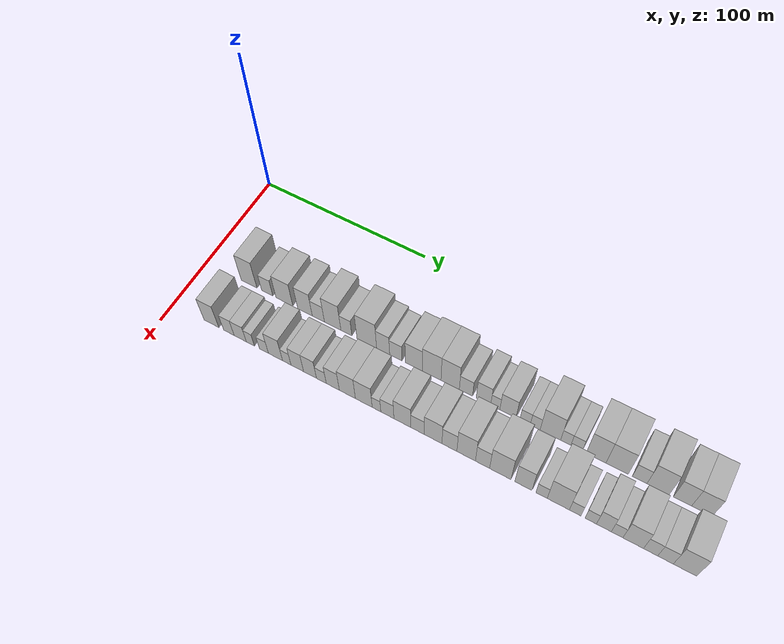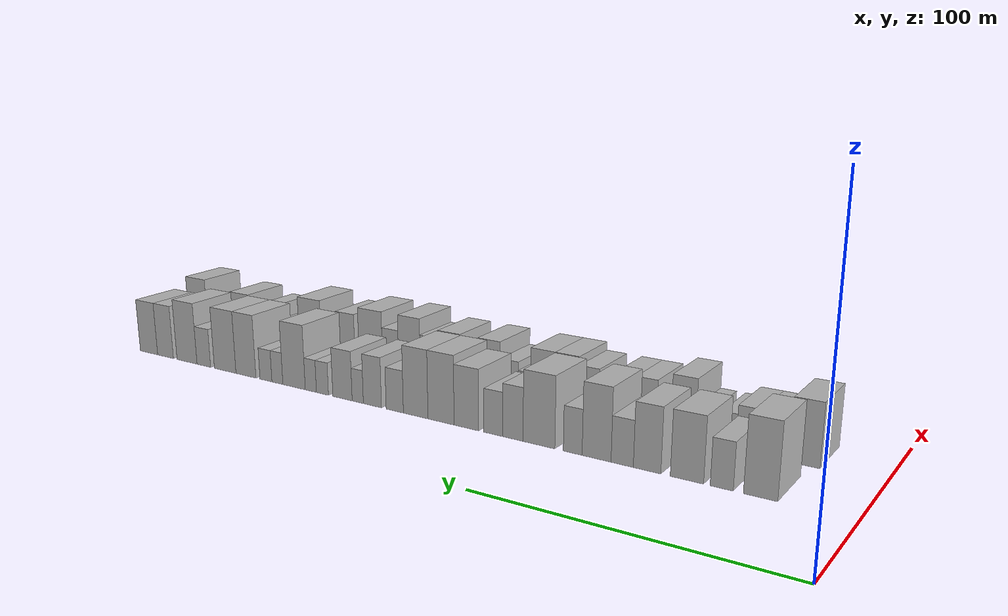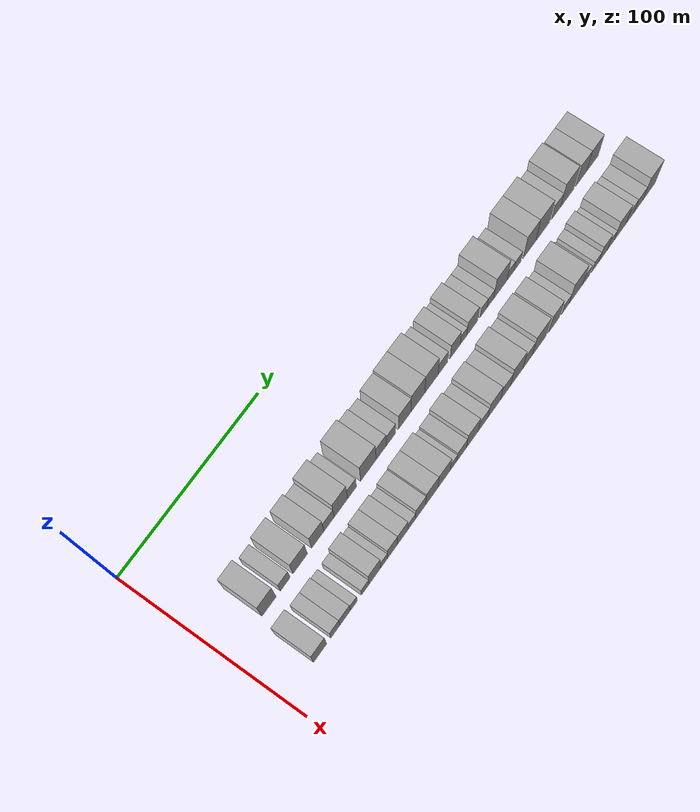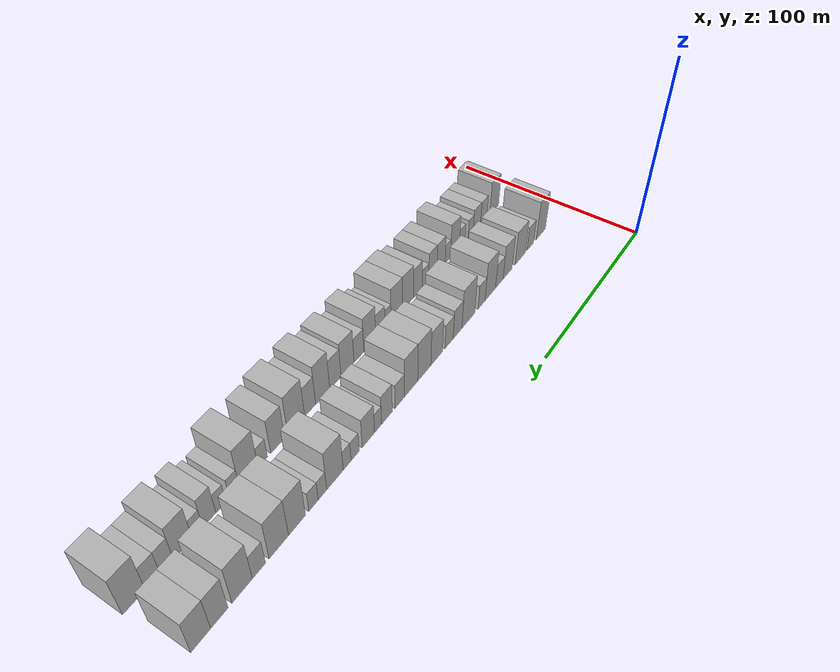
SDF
<sdf version="1.6">
 <world name="default">
  <model name="building_32">
   <static>1</static>
   <pose>50.0000 27.4965 0 0.000000 0.000000 0.000000</pose>
   <link name="link">
    <pose>0 0 12.00 0 0 0</pose>
    <collision name="collision"><geometry><box><size>20.0000 9.9842 24.0000</size></box></geometry></collision>
    <visual name="visual">
     <cast_shadows>0</cast_shadows>
     <geometry><box><size>20.0000 9.9842 24.0000</size></box></geometry>
     <material>
      <script>
       <uri>model://HANNAS_wall/materials/scripts</uri>
       <uri>model://HANNAS_wall/materials/textures</uri>
       <name>vrc/HANNAS_wall</name>
      </script>
     </material>
    </visual>
   </link>
  </model>
  <model name="building_33">
   <static>1</static>
   <pose>50.0000 38.9702 0 0.000000 0.000000 0.000000</pose>
   <link name="link">
    <pose>0 0 7.50 0 0 0</pose>
    <collision name="collision"><geometry><box><size>20.0000 6.9632 15.0000</size></box></geometry></collision>
    <visual name="visual">
     <cast_shadows>0</cast_shadows>
     <geometry><box><size>20.0000 6.9632 15.0000</size></box></geometry>
     <material>
      <script>
       <uri>model://HANNAS_wall/materials/scripts</uri>
       <uri>model://HANNAS_wall/materials/textures</uri>
       <name>vrc/HANNAS_wall</name>
      </script>
     </material>
    </visual>
   </link>
  </model>
  <model name="building_34">
   <static>1</static>
   <pose>50.0000 49.6491 0 0.000000 0.000000 0.000000</pose>
   <link name="link">
    <pose>0 0 10.50 0 0 0</pose>
    <collision name="collision"><geometry><box><size>20.0000 10.3947 21.0000</size></box></geometry></collision>
    <visual name="visual">
     <cast_shadows>0</cast_shadows>
     <geometry><box><size>20.0000 10.3947 21.0000</size></box></geometry>
     <material>
      <script>
       <uri>model://HANNAS_wall/materials/scripts</uri>
       <uri>model://HANNAS_wall/materials/textures</uri>
       <name>vrc/HANNAS_wall</name>
      </script>
     </material>
    </visual>
   </link>
  </model>
  <model name="building_35">
   <static>1</static>
   <pose>50.0000 62.3072 0 0.000000 0.000000 0.000000</pose>
   <link name="link">
    <pose>0 0 10.50 0 0 0</pose>
    <collision name="collision"><geometry><box><size>20.0000 8.9213 21.0000</size></box></geometry></collision>
    <visual name="visual">
     <cast_shadows>0</cast_shadows>
     <geometry><box><size>20.0000 8.9213 21.0000</size></box></geometry>
     <material>
      <script>
       <uri>model://HANNAS_wall/materials/scripts</uri>
       <uri>model://HANNAS_wall/materials/textures</uri>
       <name>vrc/HANNAS_wall</name>
      </script>
     </material>
    </visual>
   </link>
  </model>
  <model name="building_36">
   <static>1</static>
   <pose>50.0000 70.4754 0 0.000000 0.000000 0.000000</pose>
   <link name="link">
    <pose>0 0 7.50 0 0 0</pose>
    <collision name="collision"><geometry><box><size>20.0000 7.4153 15.0000</size></box></geometry></collision>
    <visual name="visual">
     <cast_shadows>0</cast_shadows>
     <geometry><box><size>20.0000 7.4153 15.0000</size></box></geometry>
     <material>
      <script>
       <uri>model://HANNAS_wall/materials/scripts</uri>
       <uri>model://HANNAS_wall/materials/textures</uri>
       <name>vrc/HANNAS_wall</name>
      </script>
     </material>
    </visual>
   </link>
  </model>
  <model name="building_37">
   <static>1</static>
   <pose>50.0000 79.1271 0 0.000000 0.000000 0.000000</pose>
   <link name="link">
    <pose>0 0 12.00 0 0 0</pose>
    <collision name="collision"><geometry><box><size>20.0000 9.8882 24.0000</size></box></geometry></collision>
    <visual name="visual">
     <cast_shadows>0</cast_shadows>
     <geometry><box><size>20.0000 9.8882 24.0000</size></box></geometry>
     <material>
      <script>
       <uri>model://HANNAS_wall/materials/scripts</uri>
       <uri>model://HANNAS_wall/materials/textures</uri>
       <name>vrc/HANNAS_wall</name>
      </script>
     </material>
    </visual>
   </link>
  </model>
  <model name="building_38">
   <static>1</static>
   <pose>50.0000 87.3557 0 0.000000 0.000000 0.000000</pose>
   <link name="link">
    <pose>0 0 7.50 0 0 0</pose>
    <collision name="collision"><geometry><box><size>20.0000 6.5690 15.0000</size></box></geometry></collision>
    <visual name="visual">
     <cast_shadows>0</cast_shadows>
     <geometry><box><size>20.0000 6.5690 15.0000</size></box></geometry>
     <material>
      <script>
       <uri>model://HANNAS_wall/materials/scripts</uri>
       <uri>model://HANNAS_wall/materials/textures</uri>
       <name>vrc/HANNAS_wall</name>
      </script>
     </material>
    </visual>
   </link>
  </model>
  <model name="building_39">
   <static>1</static>
   <pose>50.0000 99.4157 0 0.000000 0.000000 0.000000</pose>
   <link name="link">
    <pose>0 0 12.00 0 0 0</pose>
    <collision name="collision"><geometry><box><size>20.0000 11.5509 24.0000</size></box></geometry></collision>
    <visual name="visual">
     <cast_shadows>0</cast_shadows>
     <geometry><box><size>20.0000 11.5509 24.0000</size></box></geometry>
     <material>
      <script>
       <uri>model://HANNAS_wall/materials/scripts</uri>
       <uri>model://HANNAS_wall/materials/textures</uri>
       <name>vrc/HANNAS_wall</name>
      </script>
     </material>
    </visual>
   </link>
  </model>
  <model name="building_40">
   <static>1</static>
   <pose>50.0000 109.0097 0 0.000000 0.000000 0.000000</pose>
   <link name="link">
    <pose>0 0 9.00 0 0 0</pose>
    <collision name="collision"><geometry><box><size>20.0000 7.6370 18.0000</size></box></geometry></collision>
    <visual name="visual">
     <cast_shadows>0</cast_shadows>
     <geometry><box><size>20.0000 7.6370 18.0000</size></box></geometry>
     <material>
      <script>
       <uri>model://HANNAS_wall/materials/scripts</uri>
       <uri>model://HANNAS_wall/materials/textures</uri>
       <name>vrc/HANNAS_wall</name>
      </script>
     </material>
    </visual>
   </link>
  </model>
  <model name="building_41">
   <static>1</static>
   <pose>50.0000 116.3840 0 0.000000 0.000000 0.000000</pose>
   <link name="link">
    <pose>0 0 7.50 0 0 0</pose>
    <collision name="collision"><geometry><box><size>20.0000 7.1115 15.0000</size></box></geometry></collision>
    <visual name="visual">
     <cast_shadows>0</cast_shadows>
     <geometry><box><size>20.0000 7.1115 15.0000</size></box></geometry>
     <material>
      <script>
       <uri>model://HANNAS_wall/materials/scripts</uri>
       <uri>model://HANNAS_wall/materials/textures</uri>
       <name>vrc/HANNAS_wall</name>
      </script>
     </material>
    </visual>
   </link>
  </model>
  <model name="building_42">
   <static>1</static>
   <pose>50.0000 126.7651 0 0.000000 0.000000 0.000000</pose>
   <link name="link">
    <pose>0 0 10.50 0 0 0</pose>
    <collision name="collision"><geometry><box><size>20.0000 9.6506 21.0000</size></box></geometry></collision>
    <visual name="visual">
     <cast_shadows>0</cast_shadows>
     <geometry><box><size>20.0000 9.6506 21.0000</size></box></geometry>
     <material>
      <script>
       <uri>model://HANNAS_wall/materials/scripts</uri>
       <uri>model://HANNAS_wall/materials/textures</uri>
       <name>vrc/HANNAS_wall</name>
      </script>
     </material>
    </visual>
   </link>
  </model>
  <model name="building_43">
   <static>1</static>
   <pose>50.0000 136.8719 0 0.000000 0.000000 0.000000</pose>
   <link name="link">
    <pose>0 0 12.00 0 0 0</pose>
    <collision name="collision"><geometry><box><size>20.0000 10.5631 24.0000</size></box></geometry></collision>
    <visual name="visual">
     <cast_shadows>0</cast_shadows>
     <geometry><box><size>20.0000 10.5631 24.0000</size></box></geometry>
     <material>
      <script>
       <uri>model://HANNAS_wall/materials/scripts</uri>
       <uri>model://HANNAS_wall/materials/textures</uri>
       <name>vrc/HANNAS_wall</name>
      </script>
     </material>
    </visual>
   </link>
  </model>
  <model name="building_44">
   <static>1</static>
   <pose>50.0000 147.2639 0 0.000000 0.000000 0.000000</pose>
   <link name="link">
    <pose>0 0 12.00 0 0 0</pose>
    <collision name="collision"><geometry><box><size>20.0000 10.2209 24.0000</size></box></geometry></collision>
    <visual name="visual">
     <cast_shadows>0</cast_shadows>
     <geometry><box><size>20.0000 10.2209 24.0000</size></box></geometry>
     <material>
      <script>
       <uri>model://HANNAS_wall/materials/scripts</uri>
       <uri>model://HANNAS_wall/materials/textures</uri>
       <name>vrc/HANNAS_wall</name>
      </script>
     </material>
    </visual>
   </link>
  </model>
  <model name="building_45">
   <static>1</static>
   <pose>50.0000 156.0411 0 0.000000 0.000000 0.000000</pose>
   <link name="link">
    <pose>0 0 7.50 0 0 0</pose>
    <collision name="collision"><geometry><box><size>20.0000 7.3334 15.0000</size></box></geometry></collision>
    <visual name="visual">
     <cast_shadows>0</cast_shadows>
     <geometry><box><size>20.0000 7.3334 15.0000</size></box></geometry>
     <material>
      <script>
       <uri>model://HANNAS_wall/materials/scripts</uri>
       <uri>model://HANNAS_wall/materials/textures</uri>
       <name>vrc/HANNAS_wall</name>
      </script>
     </material>
    </visual>
   </link>
  </model>
  <model name="building_46">
   <static>1</static>
   <pose>50.0000 165.6689 0 0.000000 0.000000 0.000000</pose>
   <link name="link">
    <pose>0 0 9.00 0 0 0</pose>
    <collision name="collision"><geometry><box><size>20.0000 7.9223 18.0000</size></box></geometry></collision>
    <visual name="visual">
     <cast_shadows>0</cast_shadows>
     <geometry><box><size>20.0000 7.9223 18.0000</size></box></geometry>
     <material>
      <script>
       <uri>model://HANNAS_wall/materials/scripts</uri>
       <uri>model://HANNAS_wall/materials/textures</uri>
       <name>vrc/HANNAS_wall</name>
      </script>
     </material>
    </visual>
   </link>
  </model>
  <model name="building_47">
   <static>1</static>
   <pose>50.0000 172.1185 0 0.000000 0.000000 0.000000</pose>
   <link name="link">
    <pose>0 0 6.00 0 0 0</pose>
    <collision name="collision"><geometry><box><size>20.0000 4.9769 12.0000</size></box></geometry></collision>
    <visual name="visual">
     <cast_shadows>0</cast_shadows>
     <geometry><box><size>20.0000 4.9769 12.0000</size></box></geometry>
     <material>
      <script>
       <uri>model://HANNAS_wall/materials/scripts</uri>
       <uri>model://HANNAS_wall/materials/textures</uri>
       <name>vrc/HANNAS_wall</name>
      </script>
     </material>
    </visual>
   </link>
  </model>
  <model name="building_48">
   <static>1</static>
   <pose>50.0000 178.9828 0 0.000000 0.000000 0.000000</pose>
   <link name="link">
    <pose>0 0 9.00 0 0 0</pose>
    <collision name="collision"><geometry><box><size>20.0000 8.7516 18.0000</size></box></geometry></collision>
    <visual name="visual">
     <cast_shadows>0</cast_shadows>
     <geometry><box><size>20.0000 8.7516 18.0000</size></box></geometry>
     <material>
      <script>
       <uri>model://HANNAS_wall/materials/scripts</uri>
       <uri>model://HANNAS_wall/materials/textures</uri>
       <name>vrc/HANNAS_wall</name>
      </script>
     </material>
    </visual>
   </link>
  </model>
  <model name="building_49">
   <static>1</static>
   <pose>50.0000 188.1513 0 0.000000 0.000000 0.000000</pose>
   <link name="link">
    <pose>0 0 6.00 0 0 0</pose>
    <collision name="collision"><geometry><box><size>20.0000 5.5853 12.0000</size></box></geometry></collision>
    <visual name="visual">
     <cast_shadows>0</cast_shadows>
     <geometry><box><size>20.0000 5.5853 12.0000</size></box></geometry>
     <material>
      <script>
       <uri>model://HANNAS_wall/materials/scripts</uri>
       <uri>model://HANNAS_wall/materials/textures</uri>
       <name>vrc/HANNAS_wall</name>
      </script>
     </material>
    </visual>
   </link>
  </model>
  <model name="building_50">
   <static>1</static>
   <pose>50.0000 193.5602 0 0.000000 0.000000 0.000000</pose>
   <link name="link">
    <pose>0 0 6.00 0 0 0</pose>
    <collision name="collision"><geometry><box><size>20.0000 5.2325 12.0000</size></box></geometry></collision>
    <visual name="visual">
     <cast_shadows>0</cast_shadows>
     <geometry><box><size>20.0000 5.2325 12.0000</size></box></geometry>
     <material>
      <script>
       <uri>model://HANNAS_wall/materials/scripts</uri>
       <uri>model://HANNAS_wall/materials/textures</uri>
       <name>vrc/HANNAS_wall</name>
      </script>
     </material>
    </visual>
   </link>
  </model>
  <model name="building_51">
   <static>1</static>
   <pose>50.0000 201.5715 0 0.000000 0.000000 0.000000</pose>
   <link name="link">
    <pose>0 0 12.00 0 0 0</pose>
    <collision name="collision"><geometry><box><size>20.0000 10.7901 24.0000</size></box></geometry></collision>
    <visual name="visual">
     <cast_shadows>0</cast_shadows>
     <geometry><box><size>20.0000 10.7901 24.0000</size></box></geometry>
     <material>
      <script>
       <uri>model://HANNAS_wall/materials/scripts</uri>
       <uri>model://HANNAS_wall/materials/textures</uri>
       <name>vrc/HANNAS_wall</name>
      </script>
     </material>
    </visual>
   </link>
  </model>
  <model name="building_52">
   <static>1</static>
   <pose>50.0000 209.6448 0 0.000000 0.000000 0.000000</pose>
   <link name="link">
    <pose>0 0 6.00 0 0 0</pose>
    <collision name="collision"><geometry><box><size>20.0000 5.3565 12.0000</size></box></geometry></collision>
    <visual name="visual">
     <cast_shadows>0</cast_shadows>
     <geometry><box><size>20.0000 5.3565 12.0000</size></box></geometry>
     <material>
      <script>
       <uri>model://HANNAS_wall/materials/scripts</uri>
       <uri>model://HANNAS_wall/materials/textures</uri>
       <name>vrc/HANNAS_wall</name>
      </script>
     </material>
    </visual>
   </link>
  </model>
  <model name="building_53">
   <static>1</static>
   <pose>50.0000 215.2984 0 0.000000 0.000000 0.000000</pose>
   <link name="link">
    <pose>0 0 6.00 0 0 0</pose>
    <collision name="collision"><geometry><box><size>20.0000 5.9508 12.0000</size></box></geometry></collision>
    <visual name="visual">
     <cast_shadows>0</cast_shadows>
     <geometry><box><size>20.0000 5.9508 12.0000</size></box></geometry>
     <material>
      <script>
       <uri>model://HANNAS_wall/materials/scripts</uri>
       <uri>model://HANNAS_wall/materials/textures</uri>
       <name>vrc/HANNAS_wall</name>
      </script>
     </material>
    </visual>
   </link>
  </model>
  <model name="building_54">
   <static>1</static>
   <pose>50.0000 225.3693 0 0.000000 0.000000 0.000000</pose>
   <link name="link">
    <pose>0 0 12.00 0 0 0</pose>
    <collision name="collision"><geometry><box><size>20.0000 10.1909 24.0000</size></box></geometry></collision>
    <visual name="visual">
     <cast_shadows>0</cast_shadows>
     <geometry><box><size>20.0000 10.1909 24.0000</size></box></geometry>
     <material>
      <script>
       <uri>model://HANNAS_wall/materials/scripts</uri>
       <uri>model://HANNAS_wall/materials/textures</uri>
       <name>vrc/HANNAS_wall</name>
      </script>
     </material>
    </visual>
   </link>
  </model>
  <model name="building_55">
   <static>1</static>
   <pose>50.0000 236.1086 0 0.000000 0.000000 0.000000</pose>
   <link name="link">
    <pose>0 0 12.00 0 0 0</pose>
    <collision name="collision"><geometry><box><size>20.0000 11.2876 24.0000</size></box></geometry></collision>
    <visual name="visual">
     <cast_shadows>0</cast_shadows>
     <geometry><box><size>20.0000 11.2876 24.0000</size></box></geometry>
     <material>
      <script>
       <uri>model://HANNAS_wall/materials/scripts</uri>
       <uri>model://HANNAS_wall/materials/textures</uri>
       <name>vrc/HANNAS_wall</name>
      </script>
     </material>
    </visual>
   </link>
  </model>
  <model name="building_56">
   <static>1</static>
   <pose>50.0000 247.4181 0 0.000000 0.000000 0.000000</pose>
   <link name="link">
    <pose>0 0 7.50 0 0 0</pose>
    <collision name="collision"><geometry><box><size>20.0000 7.3316 15.0000</size></box></geometry></collision>
    <visual name="visual">
     <cast_shadows>0</cast_shadows>
     <geometry><box><size>20.0000 7.3316 15.0000</size></box></geometry>
     <material>
      <script>
       <uri>model://HANNAS_wall/materials/scripts</uri>
       <uri>model://HANNAS_wall/materials/textures</uri>
       <name>vrc/HANNAS_wall</name>
      </script>
     </material>
    </visual>
   </link>
  </model>
  <model name="building_57">
   <static>1</static>
   <pose>50.0000 256.5785 0 0.000000 0.000000 0.000000</pose>
   <link name="link">
    <pose>0 0 12.00 0 0 0</pose>
    <collision name="collision"><geometry><box><size>20.0000 10.9893 24.0000</size></box></geometry></collision>
    <visual name="visual">
     <cast_shadows>0</cast_shadows>
     <geometry><box><size>20.0000 10.9893 24.0000</size></box></geometry>
     <material>
      <script>
       <uri>model://HANNAS_wall/materials/scripts</uri>
       <uri>model://HANNAS_wall/materials/textures</uri>
       <name>vrc/HANNAS_wall</name>
      </script>
     </material>
    </visual>
   </link>
  </model>
  <model name="building_58">
   <static>1</static>
   <pose>50.0000 268.5395 0 0.000000 0.000000 0.000000</pose>
   <link name="link">
    <pose>0 0 10.50 0 0 0</pose>
    <collision name="collision"><geometry><box><size>20.0000 8.9328 21.0000</size></box></geometry></collision>
    <visual name="visual">
     <cast_shadows>0</cast_shadows>
     <geometry><box><size>20.0000 8.9328 21.0000</size></box></geometry>
     <material>
      <script>
       <uri>model://HANNAS_wall/materials/scripts</uri>
       <uri>model://HANNAS_wall/materials/textures</uri>
       <name>vrc/HANNAS_wall</name>
      </script>
     </material>
    </visual>
   </link>
  </model>
  <model name="building_59">
   <static>1</static>
   <pose>50.0000 277.9779 0 0.000000 0.000000 0.000000</pose>
   <link name="link">
    <pose>0 0 10.50 0 0 0</pose>
    <collision name="collision"><geometry><box><size>20.0000 9.9439 21.0000</size></box></geometry></collision>
    <visual name="visual">
     <cast_shadows>0</cast_shadows>
     <geometry><box><size>20.0000 9.9439 21.0000</size></box></geometry>
     <material>
      <script>
       <uri>model://HANNAS_wall/materials/scripts</uri>
       <uri>model://HANNAS_wall/materials/textures</uri>
       <name>vrc/HANNAS_wall</name>
      </script>
     </material>
    </visual>
   </link>
  </model>
  <model name="building_89">
   <static>1</static>
   <pose>79.0000 24.1401 0 0.000000 0.000000 0.000000</pose>
   <link name="link">
    <pose>0 0 10.50 0 0 0</pose>
    <collision name="collision"><geometry><box><size>20.0000 9.2782 21.0000</size></box></geometry></collision>
    <visual name="visual">
     <cast_shadows>0</cast_shadows>
     <geometry><box><size>20.0000 9.2782 21.0000</size></box></geometry>
     <material>
      <script>
       <uri>model://HANNAS_wall/materials/scripts</uri>
       <uri>model://HANNAS_wall/materials/textures</uri>
       <name>vrc/HANNAS_wall</name>
      </script>
     </material>
    </visual>
   </link>
  </model>
  <model name="building_90">
   <static>1</static>
   <pose>79.0000 35.0434 0 0.000000 0.000000 0.000000</pose>
   <link name="link">
    <pose>0 0 7.50 0 0 0</pose>
    <collision name="collision"><geometry><box><size>20.0000 6.5285 15.0000</size></box></geometry></collision>
    <visual name="visual">
     <cast_shadows>0</cast_shadows>
     <geometry><box><size>20.0000 6.5285 15.0000</size></box></geometry>
     <material>
      <script>
       <uri>model://HANNAS_wall/materials/scripts</uri>
       <uri>model://HANNAS_wall/materials/textures</uri>
       <name>vrc/HANNAS_wall</name>
      </script>
     </material>
    </visual>
   </link>
  </model>
  <model name="building_91">
   <static>1</static>
   <pose>79.0000 42.0361 0 0.000000 0.000000 0.000000</pose>
   <link name="link">
    <pose>0 0 7.50 0 0 0</pose>
    <collision name="collision"><geometry><box><size>20.0000 7.4569 15.0000</size></box></geometry></collision>
    <visual name="visual">
     <cast_shadows>0</cast_shadows>
     <geometry><box><size>20.0000 7.4569 15.0000</size></box></geometry>
     <material>
      <script>
       <uri>model://HANNAS_wall/materials/scripts</uri>
       <uri>model://HANNAS_wall/materials/textures</uri>
       <name>vrc/HANNAS_wall</name>
      </script>
     </material>
    </visual>
   </link>
  </model>
  <model name="building_92">
   <static>1</static>
   <pose>79.0000 48.2579 0 0.000000 0.000000 0.000000</pose>
   <link name="link">
    <pose>0 0 6.00 0 0 0</pose>
    <collision name="collision"><geometry><box><size>20.0000 4.9867 12.0000</size></box></geometry></collision>
    <visual name="visual">
     <cast_shadows>0</cast_shadows>
     <geometry><box><size>20.0000 4.9867 12.0000</size></box></geometry>
     <material>
      <script>
       <uri>model://HANNAS_wall/materials/scripts</uri>
       <uri>model://HANNAS_wall/materials/textures</uri>
       <name>vrc/HANNAS_wall</name>
      </script>
     </material>
    </visual>
   </link>
  </model>
  <model name="building_93">
   <static>1</static>
   <pose>79.0000 56.4849 0 0.000000 0.000000 0.000000</pose>
   <link name="link">
    <pose>0 0 6.00 0 0 0</pose>
    <collision name="collision"><geometry><box><size>20.0000 5.4672 12.0000</size></box></geometry></collision>
    <visual name="visual">
     <cast_shadows>0</cast_shadows>
     <geometry><box><size>20.0000 5.4672 12.0000</size></box></geometry>
     <material>
      <script>
       <uri>model://HANNAS_wall/materials/scripts</uri>
       <uri>model://HANNAS_wall/materials/textures</uri>
       <name>vrc/HANNAS_wall</name>
      </script>
     </material>
    </visual>
   </link>
  </model>
  <model name="building_94">
   <static>1</static>
   <pose>79.0000 63.4573 0 0.000000 0.000000 0.000000</pose>
   <link name="link">
    <pose>0 0 10.50 0 0 0</pose>
    <collision name="collision"><geometry><box><size>20.0000 8.4775 21.0000</size></box></geometry></collision>
    <visual name="visual">
     <cast_shadows>0</cast_shadows>
     <geometry><box><size>20.0000 8.4775 21.0000</size></box></geometry>
     <material>
      <script>
       <uri>model://HANNAS_wall/materials/scripts</uri>
       <uri>model://HANNAS_wall/materials/textures</uri>
       <name>vrc/HANNAS_wall</name>
      </script>
     </material>
    </visual>
   </link>
  </model>
  <model name="building_95">
   <static>1</static>
   <pose>79.0000 70.2012 0 0.000000 0.000000 0.000000</pose>
   <link name="link">
    <pose>0 0 6.00 0 0 0</pose>
    <collision name="collision"><geometry><box><size>20.0000 5.0103 12.0000</size></box></geometry></collision>
    <visual name="visual">
     <cast_shadows>0</cast_shadows>
     <geometry><box><size>20.0000 5.0103 12.0000</size></box></geometry>
     <material>
      <script>
       <uri>model://HANNAS_wall/materials/scripts</uri>
       <uri>model://HANNAS_wall/materials/textures</uri>
       <name>vrc/HANNAS_wall</name>
      </script>
     </material>
    </visual>
   </link>
  </model>
  <model name="building_96">
   <static>1</static>
   <pose>79.0000 76.4694 0 0.000000 0.000000 0.000000</pose>
   <link name="link">
    <pose>0 0 9.00 0 0 0</pose>
    <collision name="collision"><geometry><box><size>20.0000 7.5262 18.0000</size></box></geometry></collision>
    <visual name="visual">
     <cast_shadows>0</cast_shadows>
     <geometry><box><size>20.0000 7.5262 18.0000</size></box></geometry>
     <material>
      <script>
       <uri>model://HANNAS_wall/materials/scripts</uri>
       <uri>model://HANNAS_wall/materials/textures</uri>
       <name>vrc/HANNAS_wall</name>
      </script>
     </material>
    </visual>
   </link>
  </model>
  <model name="building_97">
   <static>1</static>
   <pose>79.0000 83.9951 0 0.000000 0.000000 0.000000</pose>
   <link name="link">
    <pose>0 0 9.00 0 0 0</pose>
    <collision name="collision"><geometry><box><size>20.0000 7.5254 18.0000</size></box></geometry></collision>
    <visual name="visual">
     <cast_shadows>0</cast_shadows>
     <geometry><box><size>20.0000 7.5254 18.0000</size></box></geometry>
     <material>
      <script>
       <uri>model://HANNAS_wall/materials/scripts</uri>
       <uri>model://HANNAS_wall/materials/textures</uri>
       <name>vrc/HANNAS_wall</name>
      </script>
     </material>
    </visual>
   </link>
  </model>
  <model name="building_98">
   <static>1</static>
   <pose>79.0000 90.5973 0 0.000000 0.000000 0.000000</pose>
   <link name="link">
    <pose>0 0 6.00 0 0 0</pose>
    <collision name="collision"><geometry><box><size>20.0000 5.6790 12.0000</size></box></geometry></collision>
    <visual name="visual">
     <cast_shadows>0</cast_shadows>
     <geometry><box><size>20.0000 5.6790 12.0000</size></box></geometry>
     <material>
      <script>
       <uri>model://HANNAS_wall/materials/scripts</uri>
       <uri>model://HANNAS_wall/materials/textures</uri>
       <name>vrc/HANNAS_wall</name>
      </script>
     </material>
    </visual>
   </link>
  </model>
  <model name="building_99">
   <static>1</static>
   <pose>79.0000 97.2265 0 0.000000 0.000000 0.000000</pose>
   <link name="link">
    <pose>0 0 9.00 0 0 0</pose>
    <collision name="collision"><geometry><box><size>20.0000 7.5794 18.0000</size></box></geometry></collision>
    <visual name="visual">
     <cast_shadows>0</cast_shadows>
     <geometry><box><size>20.0000 7.5794 18.0000</size></box></geometry>
     <material>
      <script>
       <uri>model://HANNAS_wall/materials/scripts</uri>
       <uri>model://HANNAS_wall/materials/textures</uri>
       <name>vrc/HANNAS_wall</name>
      </script>
     </material>
    </visual>
   </link>
  </model>
  <model name="building_100">
   <static>1</static>
   <pose>79.0000 105.6325 0 0.000000 0.000000 0.000000</pose>
   <link name="link">
    <pose>0 0 10.50 0 0 0</pose>
    <collision name="collision"><geometry><box><size>20.0000 9.2324 21.0000</size></box></geometry></collision>
    <visual name="visual">
     <cast_shadows>0</cast_shadows>
     <geometry><box><size>20.0000 9.2324 21.0000</size></box></geometry>
     <material>
      <script>
       <uri>model://HANNAS_wall/materials/scripts</uri>
       <uri>model://HANNAS_wall/materials/textures</uri>
       <name>vrc/HANNAS_wall</name>
      </script>
     </material>
    </visual>
   </link>
  </model>
  <model name="building_101">
   <static>1</static>
   <pose>79.0000 114.9987 0 0.000000 0.000000 0.000000</pose>
   <link name="link">
    <pose>0 0 10.50 0 0 0</pose>
    <collision name="collision"><geometry><box><size>20.0000 9.5001 21.0000</size></box></geometry></collision>
    <visual name="visual">
     <cast_shadows>0</cast_shadows>
     <geometry><box><size>20.0000 9.5001 21.0000</size></box></geometry>
     <material>
      <script>
       <uri>model://HANNAS_wall/materials/scripts</uri>
       <uri>model://HANNAS_wall/materials/textures</uri>
       <name>vrc/HANNAS_wall</name>
      </script>
     </material>
    </visual>
   </link>
  </model>
  <model name="building_102">
   <static>1</static>
   <pose>79.0000 122.1829 0 0.000000 0.000000 0.000000</pose>
   <link name="link">
    <pose>0 0 6.00 0 0 0</pose>
    <collision name="collision"><geometry><box><size>20.0000 4.8683 12.0000</size></box></geometry></collision>
    <visual name="visual">
     <cast_shadows>0</cast_shadows>
     <geometry><box><size>20.0000 4.8683 12.0000</size></box></geometry>
     <material>
      <script>
       <uri>model://HANNAS_wall/materials/scripts</uri>
       <uri>model://HANNAS_wall/materials/textures</uri>
       <name>vrc/HANNAS_wall</name>
      </script>
     </material>
    </visual>
   </link>
  </model>
  <model name="building_103">
   <static>1</static>
   <pose>79.0000 128.2972 0 0.000000 0.000000 0.000000</pose>
   <link name="link">
    <pose>0 0 7.50 0 0 0</pose>
    <collision name="collision"><geometry><box><size>20.0000 7.3603 15.0000</size></box></geometry></collision>
    <visual name="visual">
     <cast_shadows>0</cast_shadows>
     <geometry><box><size>20.0000 7.3603 15.0000</size></box></geometry>
     <material>
      <script>
       <uri>model://HANNAS_wall/materials/scripts</uri>
       <uri>model://HANNAS_wall/materials/textures</uri>
       <name>vrc/HANNAS_wall</name>
      </script>
     </material>
    </visual>
   </link>
  </model>
  <model name="building_104">
   <static>1</static>
   <pose>79.0000 136.6159 0 0.000000 0.000000 0.000000</pose>
   <link name="link">
    <pose>0 0 10.50 0 0 0</pose>
    <collision name="collision"><geometry><box><size>20.0000 9.2771 21.0000</size></box></geometry></collision>
    <visual name="visual">
     <cast_shadows>0</cast_shadows>
     <geometry><box><size>20.0000 9.2771 21.0000</size></box></geometry>
     <material>
      <script>
       <uri>model://HANNAS_wall/materials/scripts</uri>
       <uri>model://HANNAS_wall/materials/textures</uri>
       <name>vrc/HANNAS_wall</name>
      </script>
     </material>
    </visual>
   </link>
  </model>
  <model name="building_105">
   <static>1</static>
   <pose>79.0000 144.9880 0 0.000000 0.000000 0.000000</pose>
   <link name="link">
    <pose>0 0 7.50 0 0 0</pose>
    <collision name="collision"><geometry><box><size>20.0000 7.4671 15.0000</size></box></geometry></collision>
    <visual name="visual">
     <cast_shadows>0</cast_shadows>
     <geometry><box><size>20.0000 7.4671 15.0000</size></box></geometry>
     <material>
      <script>
       <uri>model://HANNAS_wall/materials/scripts</uri>
       <uri>model://HANNAS_wall/materials/textures</uri>
       <name>vrc/HANNAS_wall</name>
      </script>
     </material>
    </visual>
   </link>
  </model>
  <model name="building_106">
   <static>1</static>
   <pose>79.0000 153.5166 0 0.000000 0.000000 0.000000</pose>
   <link name="link">
    <pose>0 0 10.50 0 0 0</pose>
    <collision name="collision"><geometry><box><size>20.0000 9.5900 21.0000</size></box></geometry></collision>
    <visual name="visual">
     <cast_shadows>0</cast_shadows>
     <geometry><box><size>20.0000 9.5900 21.0000</size></box></geometry>
     <material>
      <script>
       <uri>model://HANNAS_wall/materials/scripts</uri>
       <uri>model://HANNAS_wall/materials/textures</uri>
       <name>vrc/HANNAS_wall</name>
      </script>
     </material>
    </visual>
   </link>
  </model>
  <model name="building_107">
   <static>1</static>
   <pose>79.0000 162.3363 0 0.000000 0.000000 0.000000</pose>
   <link name="link">
    <pose>0 0 9.00 0 0 0</pose>
    <collision name="collision"><geometry><box><size>20.0000 8.0494 18.0000</size></box></geometry></collision>
    <visual name="visual">
     <cast_shadows>0</cast_shadows>
     <geometry><box><size>20.0000 8.0494 18.0000</size></box></geometry>
     <material>
      <script>
       <uri>model://HANNAS_wall/materials/scripts</uri>
       <uri>model://HANNAS_wall/materials/textures</uri>
       <name>vrc/HANNAS_wall</name>
      </script>
     </material>
    </visual>
   </link>
  </model>
  <model name="building_108">
   <static>1</static>
   <pose>79.0000 171.2956 0 0.000000 0.000000 0.000000</pose>
   <link name="link">
    <pose>0 0 12.00 0 0 0</pose>
    <collision name="collision"><geometry><box><size>20.0000 9.8692 24.0000</size></box></geometry></collision>
    <visual name="visual">
     <cast_shadows>0</cast_shadows>
     <geometry><box><size>20.0000 9.8692 24.0000</size></box></geometry>
     <material>
      <script>
       <uri>model://HANNAS_wall/materials/scripts</uri>
       <uri>model://HANNAS_wall/materials/textures</uri>
       <name>vrc/HANNAS_wall</name>
      </script>
     </material>
    </visual>
   </link>
  </model>
  <model name="building_109">
   <static>1</static>
   <pose>79.0000 179.9773 0 0.000000 0.000000 0.000000</pose>
   <link name="link">
    <pose>0 0 9.00 0 0 0</pose>
    <collision name="collision"><geometry><box><size>20.0000 7.4942 18.0000</size></box></geometry></collision>
    <visual name="visual">
     <cast_shadows>0</cast_shadows>
     <geometry><box><size>20.0000 7.4942 18.0000</size></box></geometry>
     <material>
      <script>
       <uri>model://HANNAS_wall/materials/scripts</uri>
       <uri>model://HANNAS_wall/materials/textures</uri>
       <name>vrc/HANNAS_wall</name>
      </script>
     </material>
    </visual>
   </link>
  </model>
  <model name="building_110">
   <static>1</static>
   <pose>79.0000 189.2990 0 0.000000 0.000000 0.000000</pose>
   <link name="link">
    <pose>0 0 12.00 0 0 0</pose>
    <collision name="collision"><geometry><box><size>20.0000 11.1493 24.0000</size></box></geometry></collision>
    <visual name="visual">
     <cast_shadows>0</cast_shadows>
     <geometry><box><size>20.0000 11.1493 24.0000</size></box></geometry>
     <material>
      <script>
       <uri>model://HANNAS_wall/materials/scripts</uri>
       <uri>model://HANNAS_wall/materials/textures</uri>
       <name>vrc/HANNAS_wall</name>
      </script>
     </material>
    </visual>
   </link>
  </model>
  <model name="building_111">
   <static>1</static>
   <pose>79.0000 201.3029 0 0.000000 0.000000 0.000000</pose>
   <link name="link">
    <pose>0 0 10.50 0 0 0</pose>
    <collision name="collision"><geometry><box><size>20.0000 8.8585 21.0000</size></box></geometry></collision>
    <visual name="visual">
     <cast_shadows>0</cast_shadows>
     <geometry><box><size>20.0000 8.8585 21.0000</size></box></geometry>
     <material>
      <script>
       <uri>model://HANNAS_wall/materials/scripts</uri>
       <uri>model://HANNAS_wall/materials/textures</uri>
       <name>vrc/HANNAS_wall</name>
      </script>
     </material>
    </visual>
   </link>
  </model>
  <model name="building_112">
   <static>1</static>
   <pose>79.0000 210.6109 0 0.000000 0.000000 0.000000</pose>
   <link name="link">
    <pose>0 0 6.00 0 0 0</pose>
    <collision name="collision"><geometry><box><size>20.0000 5.7574 12.0000</size></box></geometry></collision>
    <visual name="visual">
     <cast_shadows>0</cast_shadows>
     <geometry><box><size>20.0000 5.7574 12.0000</size></box></geometry>
     <material>
      <script>
       <uri>model://HANNAS_wall/materials/scripts</uri>
       <uri>model://HANNAS_wall/materials/textures</uri>
       <name>vrc/HANNAS_wall</name>
      </script>
     </material>
    </visual>
   </link>
  </model>
  <model name="building_113">
   <static>1</static>
   <pose>79.0000 219.0923 0 0.000000 0.000000 0.000000</pose>
   <link name="link">
    <pose>0 0 12.00 0 0 0</pose>
    <collision name="collision"><geometry><box><size>20.0000 11.2054 24.0000</size></box></geometry></collision>
    <visual name="visual">
     <cast_shadows>0</cast_shadows>
     <geometry><box><size>20.0000 11.2054 24.0000</size></box></geometry>
     <material>
      <script>
       <uri>model://HANNAS_wall/materials/scripts</uri>
       <uri>model://HANNAS_wall/materials/textures</uri>
       <name>vrc/HANNAS_wall</name>
      </script>
     </material>
    </visual>
   </link>
  </model>
  <model name="building_114">
   <static>1</static>
   <pose>79.0000 227.5919 0 0.000000 0.000000 0.000000</pose>
   <link name="link">
    <pose>0 0 6.00 0 0 0</pose>
    <collision name="collision"><geometry><box><size>20.0000 5.7938 12.0000</size></box></geometry></collision>
    <visual name="visual">
     <cast_shadows>0</cast_shadows>
     <geometry><box><size>20.0000 5.7938 12.0000</size></box></geometry>
     <material>
      <script>
       <uri>model://HANNAS_wall/materials/scripts</uri>
       <uri>model://HANNAS_wall/materials/textures</uri>
       <name>vrc/HANNAS_wall</name>
      </script>
     </material>
    </visual>
   </link>
  </model>
  <model name="building_115">
   <static>1</static>
   <pose>79.0000 235.3199 0 0.000000 0.000000 0.000000</pose>
   <link name="link">
    <pose>0 0 6.00 0 0 0</pose>
    <collision name="collision"><geometry><box><size>20.0000 5.6623 12.0000</size></box></geometry></collision>
    <visual name="visual">
     <cast_shadows>0</cast_shadows>
     <geometry><box><size>20.0000 5.6623 12.0000</size></box></geometry>
     <material>
      <script>
       <uri>model://HANNAS_wall/materials/scripts</uri>
       <uri>model://HANNAS_wall/materials/textures</uri>
       <name>vrc/HANNAS_wall</name>
      </script>
     </material>
    </visual>
   </link>
  </model>
  <model name="building_116">
   <static>1</static>
   <pose>79.0000 241.7814 0 0.000000 0.000000 0.000000</pose>
   <link name="link">
    <pose>0 0 9.00 0 0 0</pose>
    <collision name="collision"><geometry><box><size>20.0000 7.2608 18.0000</size></box></geometry></collision>
    <visual name="visual">
     <cast_shadows>0</cast_shadows>
     <geometry><box><size>20.0000 7.2608 18.0000</size></box></geometry>
     <material>
      <script>
       <uri>model://HANNAS_wall/materials/scripts</uri>
       <uri>model://HANNAS_wall/materials/textures</uri>
       <name>vrc/HANNAS_wall</name>
      </script>
     </material>
    </visual>
   </link>
  </model>
  <model name="building_117">
   <static>1</static>
   <pose>79.0000 248.2467 0 0.000000 0.000000 0.000000</pose>
   <link name="link">
    <pose>0 0 6.00 0 0 0</pose>
    <collision name="collision"><geometry><box><size>20.0000 5.6698 12.0000</size></box></geometry></collision>
    <visual name="visual">
     <cast_shadows>0</cast_shadows>
     <geometry><box><size>20.0000 5.6698 12.0000</size></box></geometry>
     <material>
      <script>
       <uri>model://HANNAS_wall/materials/scripts</uri>
       <uri>model://HANNAS_wall/materials/textures</uri>
       <name>vrc/HANNAS_wall</name>
      </script>
     </material>
    </visual>
   </link>
  </model>
  <model name="building_118">
   <static>1</static>
   <pose>79.0000 256.0447 0 0.000000 0.000000 0.000000</pose>
   <link name="link">
    <pose>0 0 10.50 0 0 0</pose>
    <collision name="collision"><geometry><box><size>20.0000 9.9264 21.0000</size></box></geometry></collision>
    <visual name="visual">
     <cast_shadows>0</cast_shadows>
     <geometry><box><size>20.0000 9.9264 21.0000</size></box></geometry>
     <material>
      <script>
       <uri>model://HANNAS_wall/materials/scripts</uri>
       <uri>model://HANNAS_wall/materials/textures</uri>
       <name>vrc/HANNAS_wall</name>
      </script>
     </material>
    </visual>
   </link>
  </model>
  <model name="building_119">
   <static>1</static>
   <pose>79.0000 264.4186 0 0.000000 0.000000 0.000000</pose>
   <link name="link">
    <pose>0 0 7.50 0 0 0</pose>
    <collision name="collision"><geometry><box><size>20.0000 6.8213 15.0000</size></box></geometry></collision>
    <visual name="visual">
     <cast_shadows>0</cast_shadows>
     <geometry><box><size>20.0000 6.8213 15.0000</size></box></geometry>
     <material>
      <script>
       <uri>model://HANNAS_wall/materials/scripts</uri>
       <uri>model://HANNAS_wall/materials/textures</uri>
       <name>vrc/HANNAS_wall</name>
      </script>
     </material>
    </visual>
   </link>
  </model>
  <model name="building_120">
   <static>1</static>
   <pose>79.0000 271.5096 0 0.000000 0.000000 0.000000</pose>
   <link name="link">
    <pose>0 0 7.50 0 0 0</pose>
    <collision name="collision"><geometry><box><size>20.0000 7.3607 15.0000</size></box></geometry></collision>
    <visual name="visual">
     <cast_shadows>0</cast_shadows>
     <geometry><box><size>20.0000 7.3607 15.0000</size></box></geometry>
     <material>
      <script>
       <uri>model://HANNAS_wall/materials/scripts</uri>
       <uri>model://HANNAS_wall/materials/textures</uri>
       <name>vrc/HANNAS_wall</name>
      </script>
     </material>
    </visual>
   </link>
  </model>
  <model name="building_121">
   <static>1</static>
   <pose>79.0000 280.6705 0 0.000000 0.000000 0.000000</pose>
   <link name="link">
    <pose>0 0 12.00 0 0 0</pose>
    <collision name="collision"><geometry><box><size>20.0000 10.9610 24.0000</size></box></geometry></collision>
    <visual name="visual">
     <cast_shadows>0</cast_shadows>
     <geometry><box><size>20.0000 10.9610 24.0000</size></box></geometry>
     <material>
      <script>
       <uri>model://HANNAS_wall/materials/scripts</uri>
       <uri>model://HANNAS_wall/materials/textures</uri>
       <name>vrc/HANNAS_wall</name>
      </script>
     </material>
    </visual>
   </link>
  </model>
 </world>
</sdf>
